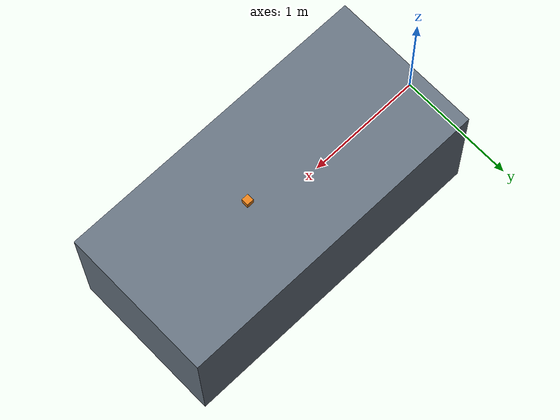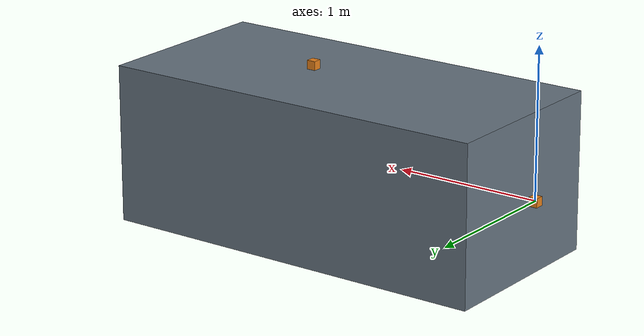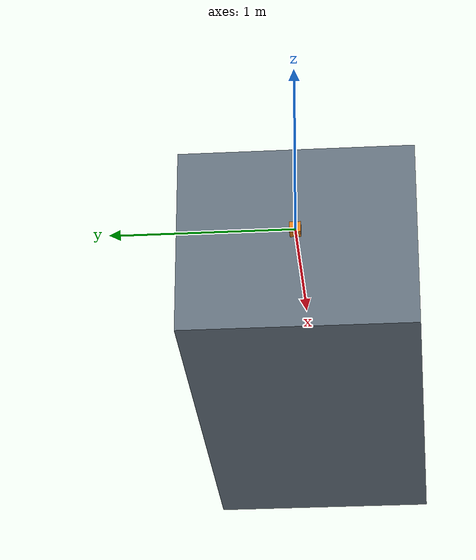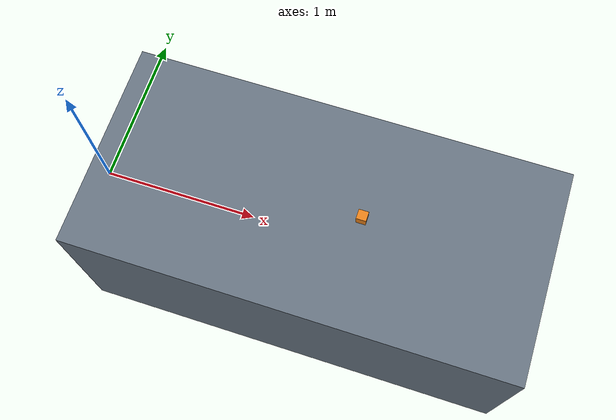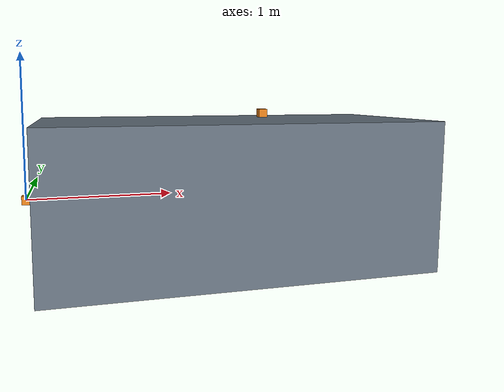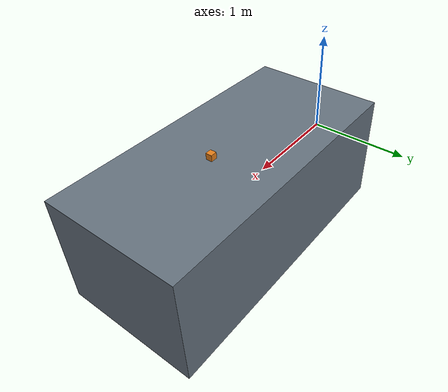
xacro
<?xml version="1.0"?>
<robot xmlns:xacro="http://www.ros.org/wiki/xacro" name="usv">

  <!-- ======================= 可覆盖参数（外参，单位 m / rad） ======================= -->
  <!-- base_link → livox_frame（基准点前方 2.05）：斜向后上方，X 轴仰起约 43.9°
       （2026-09-28 实船标定：IMU 重力 + 点云水面法线交叉验证；roll≈0，pitch=-43.86°，yaw=π） -->
  <xacro:arg name="livox_xyz" default="2.05 0.0 0.28"/>
  <xacro:arg name="livox_rpy" default="-0.0004 -0.7654 ${pi}"/>
  <!-- livox_frame → imu_link（Mid360 内置 IMU，与 fasterlio extrinsic_T 互为相反平移）：
       yaml: lidar_in_imu T=[-0.011, -0.02329, 0.04412], R=I
       → IMU 在雷达系 = -T；硬件常量，换船不用改 -->
  <xacro:arg name="imu_xyz" default="0.011 0.02329 -0.04412"/>
  <xacro:arg name="imu_rpy" default="0.0 0.0 0.0"/>
  <!-- base_link → gps_link：base_link 就是 RTK/GI320 报告点，故为零 -->
  <xacro:arg name="gps_xyz" default="0.0 0.0 0.0"/>
  <xacro:arg name="gps_rpy" default="0.0 0.0 0.0"/>
  <!-- base_link → camera_front_hik_link（海康 RTSP）= GPS + (1.7, 0, 0.58) -->
  <xacro:arg name="camera_front_hik_xyz" default="1.70 0.0 0.58"/>
  <xacro:arg name="camera_front_hik_rpy" default="0.0 0.0 0.0"/>
  <!-- base_link → camera_front_gemini_link（双目 Gemini 330，海康 −0.01/+0.09） -->
  <xacro:arg name="camera_front_gemini_xyz" default="1.71 0.0 0.49"/>
  <xacro:arg name="camera_front_gemini_rpy" default="0.0 0.0 0.0"/>
  <!-- base_link → camera_back_video_link（后视 UVC）
       朝后安装：绕 Z 转 180°（镜头指向 −x） -->
  <xacro:arg name="camera_back_video_xyz" default="1.58 0.0 0.46"/>
  <xacro:arg name="camera_back_video_rpy" default="0.0 ${-17*pi/180} ${pi}"/>

  <xacro:property name="livox_xyz" value="$(arg livox_xyz)"/>
  <xacro:property name="livox_rpy" value="$(arg livox_rpy)"/>
  <xacro:property name="imu_xyz" value="$(arg imu_xyz)"/>
  <xacro:property name="imu_rpy" value="$(arg imu_rpy)"/>
  <xacro:property name="gps_xyz" value="$(arg gps_xyz)"/>
  <xacro:property name="gps_rpy" value="$(arg gps_rpy)"/>
  <xacro:property name="camera_front_hik_xyz" value="$(arg camera_front_hik_xyz)"/>
  <xacro:property name="camera_front_hik_rpy" value="$(arg camera_front_hik_rpy)"/>
  <xacro:property name="camera_front_gemini_xyz" value="$(arg camera_front_gemini_xyz)"/>
  <xacro:property name="camera_front_gemini_rpy" value="$(arg camera_front_gemini_rpy)"/>
  <xacro:property name="camera_back_video_xyz" value="$(arg camera_back_video_xyz)"/>
  <xacro:property name="camera_back_video_rpy" value="$(arg camera_back_video_rpy)"/>

  <!-- 船体外形（仅 RViz 可视化；不影响 TF/导航）：暂沿用澄丰尺寸，兴飞实测后覆盖。
       hull_center_x 是这只占位盒子的中心相对基准点的位置，船尾留 ~0.08 m、船头 ~2.80 m -->
  <xacro:property name="hull_length" value="2.72"/>
  <xacro:property name="hull_width"  value="1.30"/>
  <xacro:property name="hull_height" value="1.07"/>
  <xacro:property name="hull_center_x" value="1.44"/>

  <material name="usv_hull_gray">
    <color rgba="0.4 0.45 0.5 1.0"/>
  </material>
  <material name="usv_sensor_orange">
    <color rgba="0.9 0.5 0.1 1.0"/>
  </material>

  <xacro:macro name="sensor_frame" params="name xyz rpy parent:=base_link">
    <link name="${name}">
      <visual>
        <geometry>
          <box size="0.06 0.06 0.06"/>
        </geometry>
        <material name="usv_sensor_orange"/>
      </visual>
    </link>
    <joint name="${parent}_to_${name}" type="fixed">
      <parent link="${parent}"/>
      <child link="${name}"/>
      <origin xyz="${xyz}" rpy="${rpy}"/>
    </joint>
  </xacro:macro>

  <!-- REP-103：camera_link → optical（Z 前、X 右、Y 下） -->
  <xacro:macro name="optical_frame" params="name parent">
    <link name="${name}"/>
    <joint name="${parent}_to_${name}" type="fixed">
      <parent link="${parent}"/>
      <child link="${name}"/>
      <origin xyz="0 0 0" rpy="${-pi/2} 0 ${-pi/2}"/>
    </joint>
  </xacro:macro>

  <link name="base_link">
    <visual>
      <origin xyz="${hull_center_x} 0 0" rpy="0 0 0"/>
      <geometry>
        <box size="${hull_length} ${hull_width} ${hull_height}"/>
      </geometry>
      <material name="usv_hull_gray"/>
    </visual>
  </link>

  <!-- Mid360：base → livox 见上方 livox_rpy（2026-09-28 标定，斜向后上方）；IMU 仍相对雷达系 -->
  <xacro:sensor_frame name="livox_frame" xyz="${livox_xyz}" rpy="${livox_rpy}"/>
  <xacro:sensor_frame name="imu_link" xyz="${imu_xyz}" rpy="${imu_rpy}" parent="livox_frame"/>
  <xacro:sensor_frame name="gps_link" xyz="${gps_xyz}" rpy="${gps_rpy}"/>

  <!-- 前向 Hikvision（RTSP 网络相机，正装）：link + optical；图像 header 用 optical -->
  <xacro:sensor_frame name="camera_front_hik_link"
                      xyz="${camera_front_hik_xyz}"
                      rpy="${camera_front_hik_rpy}"/>
  <xacro:optical_frame name="camera_front_hik_optical_frame"
                       parent="camera_front_hik_link"/>

  <!-- 前向 Gemini 330/335L（orbbec_camera）：仅挂 link；color/depth/optical/imu 各系由驱动 publish_tf 发布 -->
  <xacro:sensor_frame name="camera_front_gemini_link"
                      xyz="${camera_front_gemini_xyz}"
                      rpy="${camera_front_gemini_rpy}"/>

  <!-- 后向 UVC：link + optical；apriltag TF parent 用 link，图像 header 用 optical -->
  <xacro:sensor_frame name="camera_back_video_link"
                      xyz="${camera_back_video_xyz}"
                      rpy="${camera_back_video_rpy}"/>
  <xacro:optical_frame name="camera_back_video_optical_frame"
                       parent="camera_back_video_link"/>

</robot>
